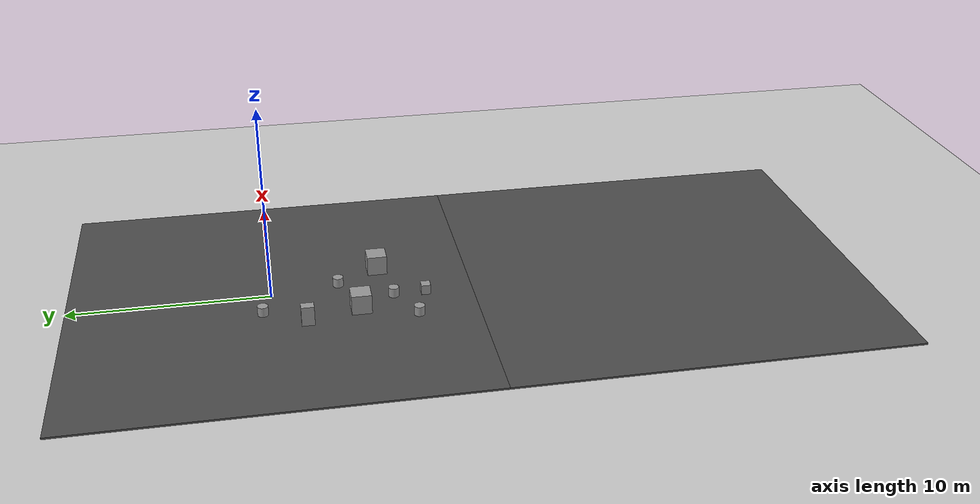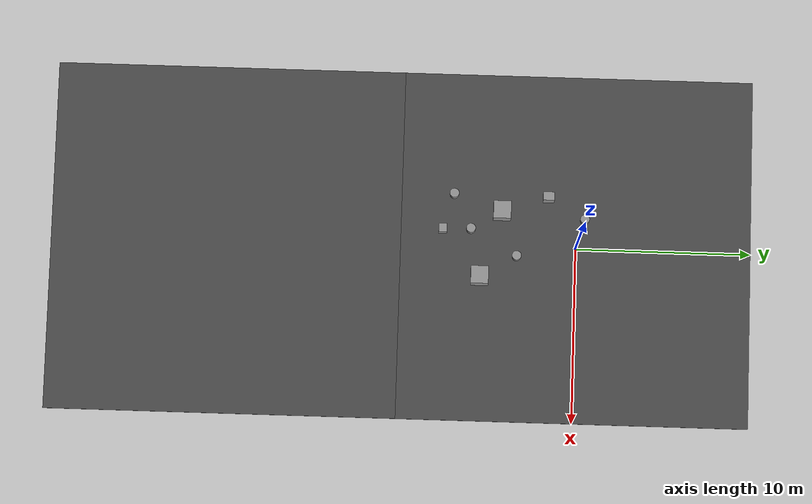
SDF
<sdf version="1.7">
 <world name="default">
  <model name="ground_plane">
   <static>1</static>
   <link name="link">
    <collision name="collision">
     <geometry><plane><normal>0 0 1</normal><size>100 100</size></plane></geometry>
     <surface>
      <contact><collide_bitmask>65535</collide_bitmask></contact>
      <friction><ode><mu>100</mu><mu2>50</mu2></ode></friction>
     </surface>
    </collision>
    <visual name="visual">
     <cast_shadows>0</cast_shadows>
     <geometry><plane><normal>0 0 1</normal><size>100 100</size></plane></geometry>
     <material>
      <script><uri>file://media/materials/scripts/gazebo.material</uri><name>Gazebo/Grey</name></script>
     </material>
    </visual>
   </link>
  </model>
  <model name="asphalt_plane">
   <static>1</static>
   <link name="link">
    <collision name="collision"><geometry><box><size>20 20 0.1</size></box></geometry></collision>
    <visual name="visual">
     <cast_shadows>0</cast_shadows>
     <geometry><box><size>20 20 0.1</size></box></geometry>
     <material>
      <script>
       <uri>model://asphalt_plane/materials/scripts</uri>
       <uri>model://asphalt_plane/materials/textures</uri>
       <name>vrc/asphalt</name>
      </script>
     </material>
    </visual>
   </link>
  </model>
  <model name="asphalt_plane_clone_1">
   <static>1</static>
   <link name="link">
    <collision name="collision"><geometry><box><size>20 20 0.1</size></box></geometry></collision>
    <visual name="visual">
     <cast_shadows>0</cast_shadows>
     <geometry><box><size>20 20 0.1</size></box></geometry>
     <material>
      <script>
       <uri>model://asphalt_plane/materials/scripts</uri>
       <uri>model://asphalt_plane/materials/textures</uri>
       <name>vrc/asphalt</name>
      </script>
     </material>
    </visual>
   </link>
   <pose>0 -20 0 0 -0 0</pose>
  </model>
  <model name="unit_cylinder_clone_1">
   <pose>-1.69362 0.491641 0.294838 -7e-06 1e-05 0.000415</pose>
   <link name="link">
    <inertial>
     <mass>1</mass>
     <inertia><ixx>0.145833</ixx><ixy>0</ixy><ixz>0</ixz><iyy>0.145833</iyy><iyz>0</iyz><izz>0.125</izz></inertia>
    </inertial>
    <collision name="collision">
     <geometry><cylinder><radius>0.264047</radius><length>0.48967</length></cylinder></geometry>
    </collision>
    <visual name="visual">
     <geometry><cylinder><radius>0.264047</radius><length>0.48967</length></cylinder></geometry>
     <material>
      <script><name>Gazebo/Grey</name><uri>file://media/materials/scripts/gazebo.material</uri></script>
     </material>
    </visual>
   </link>
  </model>
  <model name="unit_cylinder_clone_7">
   <pose>0.502174 -3.35698 0.294825 0 -0 0.000233</pose>
   <link name="link">
    <inertial>
     <mass>1</mass>
     <inertia><ixx>0.145833</ixx><ixy>0</ixy><ixz>0</ixz><iyy>0.145833</iyy><iyz>0</iyz><izz>0.125</izz></inertia>
    </inertial>
    <collision name="collision">
     <geometry><cylinder><radius>0.264047</radius><length>0.48967</length></cylinder></geometry>
    </collision>
    <visual name="visual">
     <geometry><cylinder><radius>0.264047</radius><length>0.48967</length></cylinder></geometry>
     <material>
      <script><name>Gazebo/Grey</name><uri>file://media/materials/scripts/gazebo.material</uri></script>
     </material>
    </visual>
   </link>
  </model>
  <model name="unit_cylinder_clone_9">
   <pose>-1.00002 -5.99998 0.294837 2e-06 7e-06 0.00016</pose>
   <link name="link">
    <inertial>
     <mass>1</mass>
     <inertia><ixx>0.145833</ixx><ixy>0</ixy><ixz>0</ixz><iyy>0.145833</iyy><iyz>0</iyz><izz>0.125</izz></inertia>
    </inertial>
    <collision name="collision">
     <geometry><cylinder><radius>0.264047</radius><length>0.48967</length></cylinder></geometry>
    </collision>
    <visual name="visual">
     <geometry><cylinder><radius>0.264047</radius><length>0.48967</length></cylinder></geometry>
     <material>
      <script><name>Gazebo/Grey</name><uri>file://media/materials/scripts/gazebo.material</uri></script>
     </material>
    </visual>
   </link>
  </model>
  <model name="unit_cylinder_clone_17">
   <pose>-3.00002 -6.99998 0.294825 0 0 -4.3e-05</pose>
   <link name="link">
    <inertial>
     <mass>1</mass>
     <inertia><ixx>0.145833</ixx><ixy>0</ixy><ixz>0</ixz><iyy>0.145833</iyy><iyz>0</iyz><izz>0.125</izz></inertia>
    </inertial>
    <collision name="collision">
     <geometry><cylinder><radius>0.264047</radius><length>0.48967</length></cylinder></geometry>
    </collision>
    <visual name="visual">
     <geometry><cylinder><radius>0.264047</radius><length>0.48967</length></cylinder></geometry>
     <material>
      <script><name>Gazebo/Grey</name><uri>file://media/materials/scripts/gazebo.material</uri></script>
     </material>
    </visual>
   </link>
  </model>
  <model name="unit_box_0_clone_1_clone_3">
   <pose>-0.962788 -7.60684 0.301356 0 -0 1e-06</pose>
   <link name="link">
    <inertial>
     <mass>1</mass>
     <inertia>
      <ixx>0.166667</ixx>
      <ixy>0</ixy>
      <ixz>0</ixz>
      <iyy>0.166667</iyy>
      <iyz>0</iyz>
      <izz>0.166667</izz>
     </inertia>
    </inertial>
    <collision name="collision">
     <geometry><box><size>0.495294 0.467832 0.502712</size></box></geometry>
    </collision>
    <visual name="visual">
     <geometry><box><size>0.495294 0.467832 0.502712</size></box></geometry>
     <material>
      <script><name>Gazebo/Grey</name><uri>file://media/materials/scripts/gazebo.material</uri></script>
     </material>
    </visual>
   </link>
  </model>
  <model name="unit_box_1">
   <pose>1.73473 -5.44841 0.55 0 -0 0</pose>
   <link name="link">
    <inertial>
     <mass>1</mass>
     <inertia>
      <ixx>0.166667</ixx>
      <ixy>0</ixy>
      <ixz>0</ixz>
      <iyy>0.166667</iyy>
      <iyz>0</iyz>
      <izz>0.166667</izz>
     </inertia>
    </inertial>
    <collision name="collision"><geometry><box><size>1 1 1</size></box></geometry></collision>
    <visual name="visual">
     <geometry><box><size>1 1 1</size></box></geometry>
     <material>
      <script><name>Gazebo/Grey</name><uri>file://media/materials/scripts/gazebo.material</uri></script>
     </material>
    </visual>
   </link>
  </model>
  <model name="unit_box_2">
   <pose>-2.0426 -4.24979 0.55 0 -0 0</pose>
   <link name="link">
    <inertial>
     <mass>1</mass>
     <inertia>
      <ixx>0.166667</ixx>
      <ixy>0</ixy>
      <ixz>0</ixz>
      <iyy>0.166667</iyy>
      <iyz>0</iyz>
      <izz>0.166667</izz>
     </inertia>
    </inertial>
    <collision name="collision"><geometry><box><size>1 1 1</size></box></geometry></collision>
    <visual name="visual">
     <geometry><box><size>1 1 1</size></box></geometry>
     <material>
      <script><name>Gazebo/Grey</name><uri>file://media/materials/scripts/gazebo.material</uri></script>
     </material>
    </visual>
   </link>
  </model>
  <model name="unit_box_3_clone_0">
   <pose>-2.8958 -1.60924 0.55 0 -0 0</pose>
   <link name="link">
    <inertial>
     <mass>1</mass>
     <inertia>
      <ixx>0.166667</ixx>
      <ixy>0</ixy>
      <ixz>0</ixz>
      <iyy>0.166667</iyy>
      <iyz>0</iyz>
      <izz>0.166667</izz>
     </inertia>
    </inertial>
    <collision name="collision"><geometry><box><size>0.473217 0.637104 1</size></box></geometry></collision>
    <visual name="visual">
     <geometry><box><size>0.473217 0.637104 1</size></box></geometry>
     <material>
      <script><name>Gazebo/Grey</name><uri>file://media/materials/scripts/gazebo.material</uri></script>
     </material>
    </visual>
   </link>
  </model>
 </world>
</sdf>
